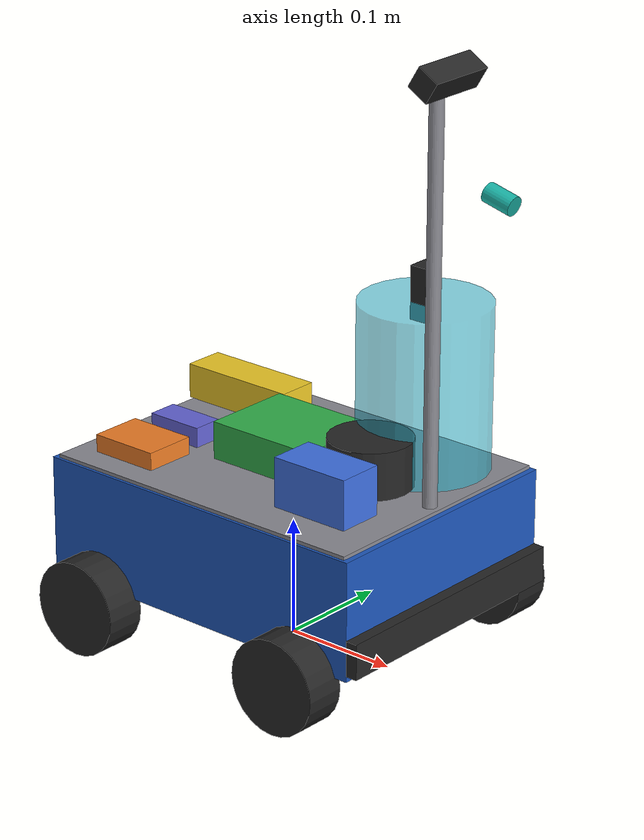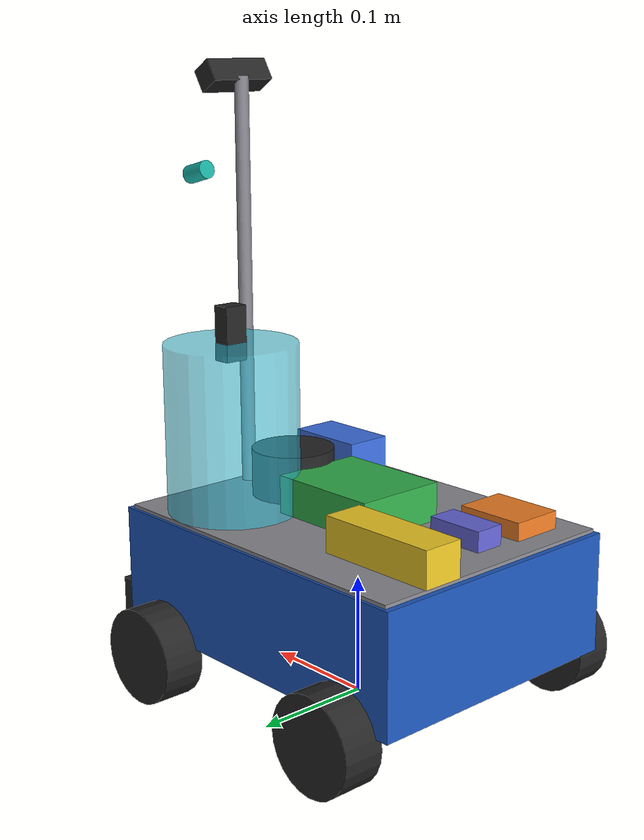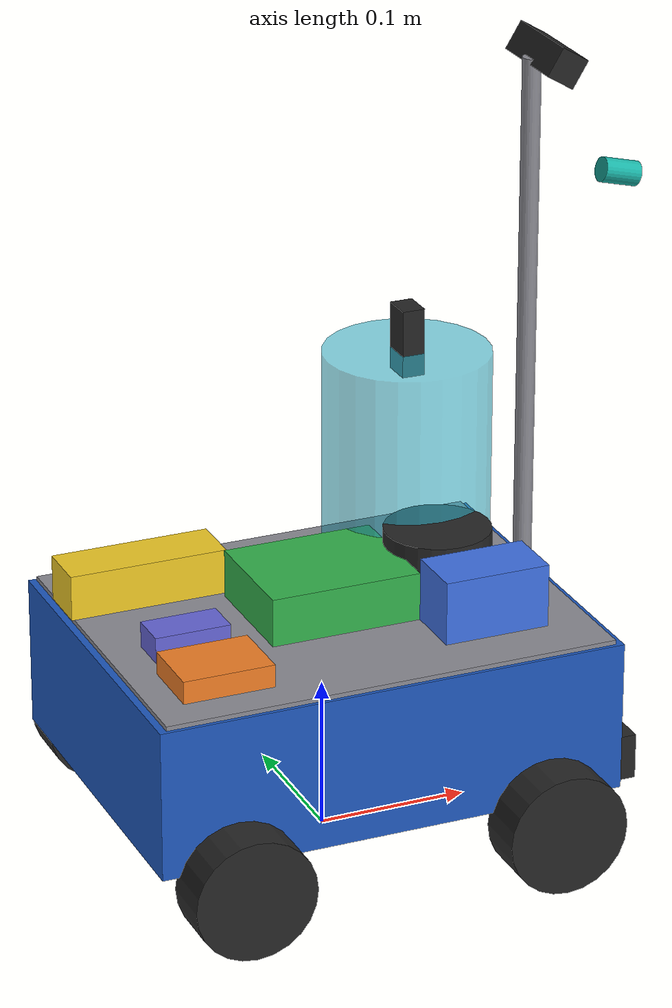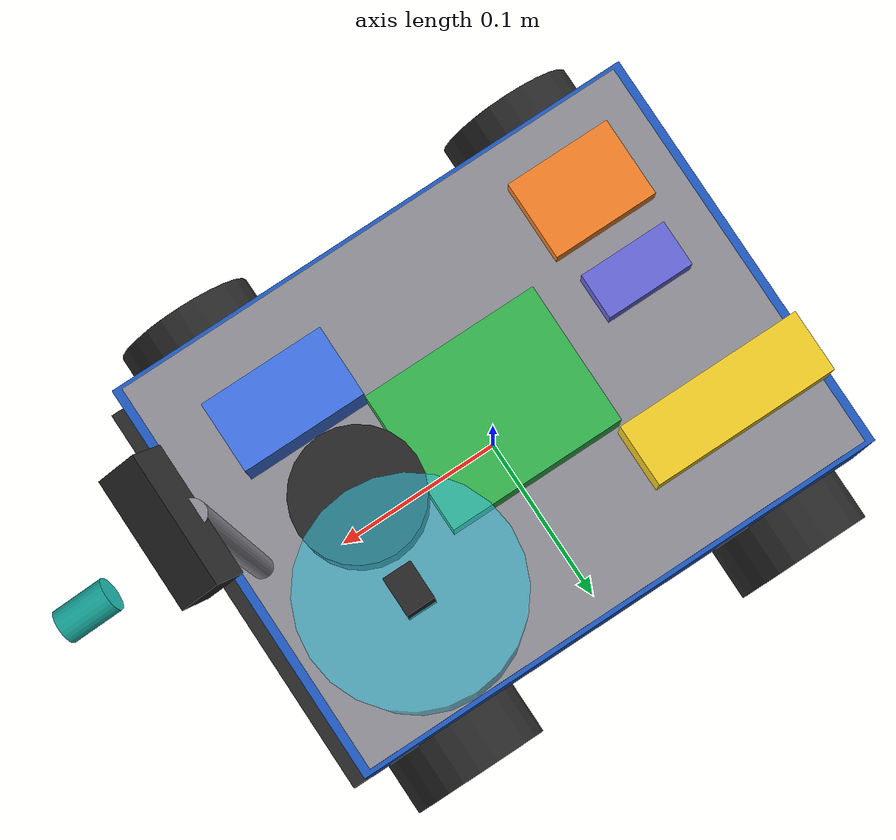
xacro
<?xml version="1.0"?>
<robot xmlns:xacro="http://www.ros.org/wiki/xacro" name="myagv_sprayer">

  <xacro:arg name="use_sim" default="true"/>
  <xacro:arg name="prefix"  default=""/>

  <xacro:include filename="$(find myagv_sprayer_description)/urdf/common_properties.xacro"/>
  <xacro:include filename="$(find myagv_sprayer_description)/urdf/myagv_base.xacro"/>
  <xacro:include filename="$(find myagv_sprayer_description)/urdf/sprayer_payload.xacro"/>

  <xacro:myagv_base prefix="$(arg prefix)"/>
  <xacro:sprayer_payload prefix="$(arg prefix)" parent="$(arg prefix)base_link"/>

  <!-- Gazebo-only plugins (sensors, drive) -->
  <xacro:if value="$(arg use_sim)">
    <xacro:include filename="$(find myagv_sprayer_description)/urdf/sensors.gazebo.xacro"/>
    <xacro:include filename="$(find myagv_sprayer_description)/urdf/gazebo_control.xacro"/>
    <xacro:include filename="$(find myagv_sprayer_description)/urdf/gazebo_materials.xacro"/>
  </xacro:if>

</robot>

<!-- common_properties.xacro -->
<robot xmlns:xacro="http://www.ros.org/wiki/xacro">

  <!-- ===== myAGV chassis (Elephant Robotics, approx. 310 x 235 x 170 mm) ===== -->
  <xacro:property name="base_length"  value="0.310"/>
  <xacro:property name="base_width"   value="0.235"/>
  <xacro:property name="base_height"  value="0.100"/>
  <xacro:property name="base_mass"    value="3.0"/>
  <xacro:property name="ground_clearance" value="0.030"/>

  <!-- mecanum wheels -->
  <xacro:property name="wheel_radius" value="0.040"/>
  <xacro:property name="wheel_width"  value="0.035"/>
  <xacro:property name="wheel_mass"   value="0.20"/>
  <xacro:property name="wheel_x"      value="0.105"/>   <!-- half wheelbase -->
  <xacro:property name="wheel_y"      value="0.130"/>   <!-- half track -->

  <!-- sensors -->
  <xacro:property name="lidar_z"      value="0.135"/>   <!-- above base_link origin -->
  <xacro:property name="camera_x"     value="0.150"/>
  <xacro:property name="camera_z"     value="0.060"/>

  <!-- payload -->
  <xacro:property name="deck_z"       value="0.105"/>   <!-- top surface of chassis -->
  <xacro:property name="tank_radius"  value="0.055"/>
  <xacro:property name="tank_height"  value="0.140"/>
  <xacro:property name="nozzle_x"     value="0.190"/>
  <xacro:property name="mast_top_z"   value="0.460"/>   <!-- camera sits on top of the mast -->
  <xacro:property name="nozzle_z"     value="0.380"/>   <!-- above canopy top (~0.30 m) -->
  <xacro:property name="nozzle_pitch" value="0.25"/>    <!-- rad, tilted down: centre-line lands ~0.3 m ahead on the canopy -->

  <xacro:macro name="box_inertia" params="m x y z">
    <inertia ixx="${m*(y*y+z*z)/12}" ixy="0" ixz="0"
             iyy="${m*(x*x+z*z)/12}" iyz="0"
             izz="${m*(x*x+y*y)/12}"/>
  </xacro:macro>

  <xacro:macro name="cylinder_inertia" params="m r h">
    <inertia ixx="${m*(3*r*r+h*h)/12}" ixy="0" ixz="0"
             iyy="${m*(3*r*r+h*h)/12}" iyz="0"
             izz="${m*r*r/2}"/>
  </xacro:macro>

  <material name="agv_blue"><color rgba="0.12 0.35 0.75 1"/></material>
  <material name="agv_dark"><color rgba="0.15 0.15 0.15 1"/></material>
  <material name="agv_grey"><color rgba="0.55 0.55 0.58 1"/></material>
  <material name="tank_cyan"><color rgba="0.20 0.75 0.85 0.6"/></material>
  <material name="pump_blue"><color rgba="0.25 0.45 0.90 1"/></material>
  <material name="nozzle_teal"><color rgba="0.10 0.70 0.65 1"/></material>
  <material name="lipo_yellow"><color rgba="0.95 0.80 0.15 1"/></material>
  <material name="jetson_green"><color rgba="0.20 0.70 0.30 1"/></material>
  <material name="relay_indigo"><color rgba="0.40 0.40 0.85 1"/></material>
  <material name="buck_orange"><color rgba="0.95 0.50 0.15 1"/></material>

</robot>

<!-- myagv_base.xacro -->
<robot xmlns:xacro="http://www.ros.org/wiki/xacro">

  <xacro:macro name="mecanum_wheel" params="prefix name x y">
    <link name="${prefix}${name}_wheel_link">
      <visual>
        <origin xyz="0 0 0" rpy="${pi/2} 0 0"/>
        <geometry><cylinder radius="${wheel_radius}" length="${wheel_width}"/></geometry>
        <material name="agv_dark"/>
      </visual>
      <collision>
        <origin xyz="0 0 0" rpy="${pi/2} 0 0"/>
        <geometry><cylinder radius="${wheel_radius}" length="${wheel_width}"/></geometry>
      </collision>
      <inertial>
        <mass value="${wheel_mass}"/>
        <xacro:cylinder_inertia m="${wheel_mass}" r="${wheel_radius}" h="${wheel_width}"/>
      </inertial>
    </link>
    <!-- Mecanum wheels are driven by libgazebo_ros_planar_move in sim; the
         real wheels are handled by the myAGV STM32 firmware, so the joints
         are 'continuous' but not actuated in the URDF. -->
    <joint name="${prefix}${name}_wheel_joint" type="continuous">
      <parent link="${prefix}base_link"/>
      <child  link="${prefix}${name}_wheel_link"/>
      <origin xyz="${x} ${y} 0" rpy="0 0 0"/>
      <axis xyz="0 1 0"/>
    </joint>
  </xacro:macro>

  <xacro:macro name="myagv_base" params="prefix">

    <link name="${prefix}base_footprint"/>

    <joint name="${prefix}base_footprint_joint" type="fixed">
      <parent link="${prefix}base_footprint"/>
      <child  link="${prefix}base_link"/>
      <origin xyz="0 0 ${wheel_radius}" rpy="0 0 0"/>
    </joint>

    <link name="${prefix}base_link">
      <visual>
        <origin xyz="0 0 ${ground_clearance + base_height/2 - wheel_radius + 0.02}" rpy="0 0 0"/>
        <geometry><box size="${base_length} ${base_width} ${base_height}"/></geometry>
        <material name="agv_blue"/>
      </visual>
      <!-- front bumper strip -->
      <visual>
        <origin xyz="${base_length/2 + 0.005} 0 0.03" rpy="0 0 0"/>
        <geometry><box size="0.01 ${base_width} 0.03"/></geometry>
        <material name="agv_dark"/>
      </visual>
      <collision>
        <origin xyz="0 0 ${ground_clearance + base_height/2 - wheel_radius + 0.02}" rpy="0 0 0"/>
        <geometry><box size="${base_length} ${base_width} ${base_height}"/></geometry>
      </collision>
      <inertial>
        <origin xyz="0 0 0.05" rpy="0 0 0"/>
        <mass value="${base_mass}"/>
        <xacro:box_inertia m="${base_mass}" x="${base_length}" y="${base_width}" z="${base_height}"/>
      </inertial>
    </link>

    <xacro:mecanum_wheel prefix="${prefix}" name="front_left"  x="${wheel_x}"  y="${wheel_y}"/>
    <xacro:mecanum_wheel prefix="${prefix}" name="front_right" x="${wheel_x}"  y="${-wheel_y}"/>
    <xacro:mecanum_wheel prefix="${prefix}" name="rear_left"   x="${-wheel_x}" y="${wheel_y}"/>
    <xacro:mecanum_wheel prefix="${prefix}" name="rear_right"  x="${-wheel_x}" y="${-wheel_y}"/>

    <!-- ===== 2D LiDAR (myAGV ships with a YDLidar on the top deck) ===== -->
    <link name="${prefix}lidar_link">
      <visual>
        <geometry><cylinder radius="0.035" length="0.04"/></geometry>
        <material name="agv_dark"/>
      </visual>
      <collision>
        <geometry><cylinder radius="0.035" length="0.04"/></geometry>
      </collision>
      <inertial>
        <mass value="0.15"/>
        <xacro:cylinder_inertia m="0.15" r="0.035" h="0.04"/>
      </inertial>
    </link>
    <joint name="${prefix}lidar_joint" type="fixed">
      <parent link="${prefix}base_link"/>
      <child  link="${prefix}lidar_link"/>
      <origin xyz="0.08 0 ${lidar_z}" rpy="0 0 0"/>
    </joint>

    <!-- ===== Front RGB camera (built-in myAGV USB camera, wired to the RasPi) ===== -->
    <link name="${prefix}camera_link">
      <visual>
        <geometry><box size="0.02 0.06 0.02"/></geometry>
        <material name="agv_dark"/>
      </visual>
      <inertial>
        <mass value="0.03"/>
        <xacro:box_inertia m="0.03" x="0.02" y="0.06" z="0.02"/>
      </inertial>
    </link>
    <joint name="${prefix}camera_joint" type="fixed">
      <parent link="${prefix}base_link"/>
      <child  link="${prefix}camera_link"/>
      <origin xyz="${camera_x} 0 ${mast_top_z}" rpy="0 0.55 0"/>
    </joint>

    <!-- REP-103 optical frame (z forward, x right, y down) -->
    <link name="${prefix}camera_optical_frame"/>
    <joint name="${prefix}camera_optical_joint" type="fixed">
      <parent link="${prefix}camera_link"/>
      <child  link="${prefix}camera_optical_frame"/>
      <origin xyz="0 0 0" rpy="${-pi/2} 0 ${-pi/2}"/>
    </joint>

  </xacro:macro>
</robot>

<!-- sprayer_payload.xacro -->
<robot xmlns:xacro="http://www.ros.org/wiki/xacro">

  <xacro:macro name="payload_box" params="prefix name parent x y z sx sy sz mass material">
    <link name="${prefix}${name}_link">
      <visual>
        <geometry><box size="${sx} ${sy} ${sz}"/></geometry>
        <material name="${material}"/>
      </visual>
      <collision>
        <geometry><box size="${sx} ${sy} ${sz}"/></geometry>
      </collision>
      <inertial>
        <mass value="${mass}"/>
        <xacro:box_inertia m="${mass}" x="${sx}" y="${sy}" z="${sz}"/>
      </inertial>
    </link>
    <joint name="${prefix}${name}_joint" type="fixed">
      <parent link="${parent}"/>
      <child  link="${prefix}${name}_link"/>
      <origin xyz="${x} ${y} ${z}" rpy="0 0 0"/>
    </joint>
  </xacro:macro>

  <xacro:macro name="sprayer_payload" params="prefix parent">

    <!-- payload mounting plate (acrylic / aluminium) -->
    <xacro:payload_box prefix="${prefix}" name="payload_plate" parent="${parent}"
        x="0.0" y="0.0" z="${deck_z + 0.004}" sx="0.30" sy="0.23" sz="0.008" mass="0.25" material="agv_grey"/>

    <!-- LiPo 3S 2200 mAh -->
    <xacro:payload_box prefix="${prefix}" name="lipo" parent="${prefix}payload_plate_link"
        x="-0.10" y="0.06" z="0.020" sx="0.105" sy="0.035" sz="0.030" mass="0.19" material="lipo_yellow"/>

    <!-- Buck converter 12V -> 5.1V / 4A -->
    <xacro:payload_box prefix="${prefix}" name="buck_converter" parent="${prefix}payload_plate_link"
        x="-0.10" y="-0.07" z="0.012" sx="0.060" sy="0.045" sz="0.015" mass="0.03" material="buck_orange"/>

    <!-- Relay module 1-ch 5V -->
    <xacro:payload_box prefix="${prefix}" name="relay" parent="${prefix}payload_plate_link"
        x="-0.10" y="-0.02" z="0.012" sx="0.050" sy="0.026" sz="0.018" mass="0.02" material="relay_indigo"/>

    <!-- Jetson Nano dev-kit (100 x 80 mm) -->
    <xacro:payload_box prefix="${prefix}" name="jetson" parent="${prefix}payload_plate_link"
        x="0.0" y="0.0" z="0.020" sx="0.100" sy="0.080" sz="0.032" mass="0.25" material="jetson_green"/>

    <!-- 1 L cylindrical tank -->
    <link name="${prefix}tank_link">
      <visual>
        <geometry><cylinder radius="${tank_radius}" length="${tank_height}"/></geometry>
        <material name="tank_cyan"/>
      </visual>
      <collision>
        <geometry><cylinder radius="${tank_radius}" length="${tank_height}"/></geometry>
      </collision>
      <inertial>
        <mass value="1.1"/>
        <xacro:cylinder_inertia m="1.1" r="${tank_radius}" h="${tank_height}"/>
      </inertial>
    </link>
    <joint name="${prefix}tank_joint" type="fixed">
      <parent link="${prefix}payload_plate_link"/>
      <child  link="${prefix}tank_link"/>
      <origin xyz="0.085 0.060 ${tank_height/2 + 0.004}" rpy="0 0 0"/>
    </joint>

    <!-- HC-SR04 ultrasonic level sensor in the tank lid, looking down -->
    <link name="${prefix}tank_level_sensor_link">
      <visual>
        <geometry><box size="0.045 0.020 0.015"/></geometry>
        <material name="agv_dark"/>
      </visual>
      <inertial>
        <mass value="0.01"/>
        <xacro:box_inertia m="0.01" x="0.045" y="0.020" z="0.015"/>
      </inertial>
    </link>
    <joint name="${prefix}tank_level_sensor_joint" type="fixed">
      <parent link="${prefix}tank_link"/>
      <child  link="${prefix}tank_level_sensor_link"/>
      <origin xyz="0 0 ${tank_height/2 + 0.008}" rpy="0 ${pi/2} 0"/>
    </joint>

    <!-- 12 V mini diaphragm pump -->
    <xacro:payload_box prefix="${prefix}" name="pump" parent="${prefix}payload_plate_link"
        x="0.085" y="-0.060" z="0.025" sx="0.070" sy="0.040" sz="0.042" mass="0.20" material="pump_blue"/>

    <!-- Nozzle mast: vertical rod on the front edge -->
    <link name="${prefix}nozzle_mast_link">
      <visual>
        <origin xyz="0 0 ${(mast_top_z - deck_z)/2}" rpy="0 0 0"/>
        <geometry><cylinder radius="0.006" length="${mast_top_z - deck_z}"/></geometry>
        <material name="agv_grey"/>
      </visual>
      <inertial>
        <mass value="0.05"/>
        <xacro:cylinder_inertia m="0.05" r="0.006" h="${mast_top_z - deck_z}"/>
      </inertial>
    </link>
    <joint name="${prefix}nozzle_mast_joint" type="fixed">
      <parent link="${parent}"/>
      <child  link="${prefix}nozzle_mast_link"/>
      <origin xyz="${nozzle_x - 0.05} 0 ${deck_z}" rpy="0 0 0"/>
    </joint>

    <!-- TeeJet hollow-cone nozzle body. +x of nozzle_link is the spray axis. -->
    <link name="${prefix}nozzle_link">
      <visual>
        <origin xyz="0.012 0 0" rpy="0 ${pi/2} 0"/>
        <geometry><cylinder radius="0.008" length="0.025"/></geometry>
        <material name="nozzle_teal"/>
      </visual>
      <inertial>
        <mass value="0.02"/>
        <xacro:cylinder_inertia m="0.02" r="0.008" h="0.025"/>
      </inertial>
    </link>
    <joint name="${prefix}nozzle_joint" type="fixed">
      <parent link="${prefix}nozzle_mast_link"/>
      <child  link="${prefix}nozzle_link"/>
      <origin xyz="0.05 0 ${nozzle_z - deck_z}" rpy="0 ${nozzle_pitch} 0"/>
    </joint>

    <!-- spray_frame = point ~0.25 m along the spray axis, used to visualise the cone -->
    <link name="${prefix}spray_frame"/>
    <joint name="${prefix}spray_frame_joint" type="fixed">
      <parent link="${prefix}nozzle_link"/>
      <child  link="${prefix}spray_frame"/>
      <origin xyz="0.25 0 0" rpy="0 0 0"/>
    </joint>

  </xacro:macro>
</robot>
